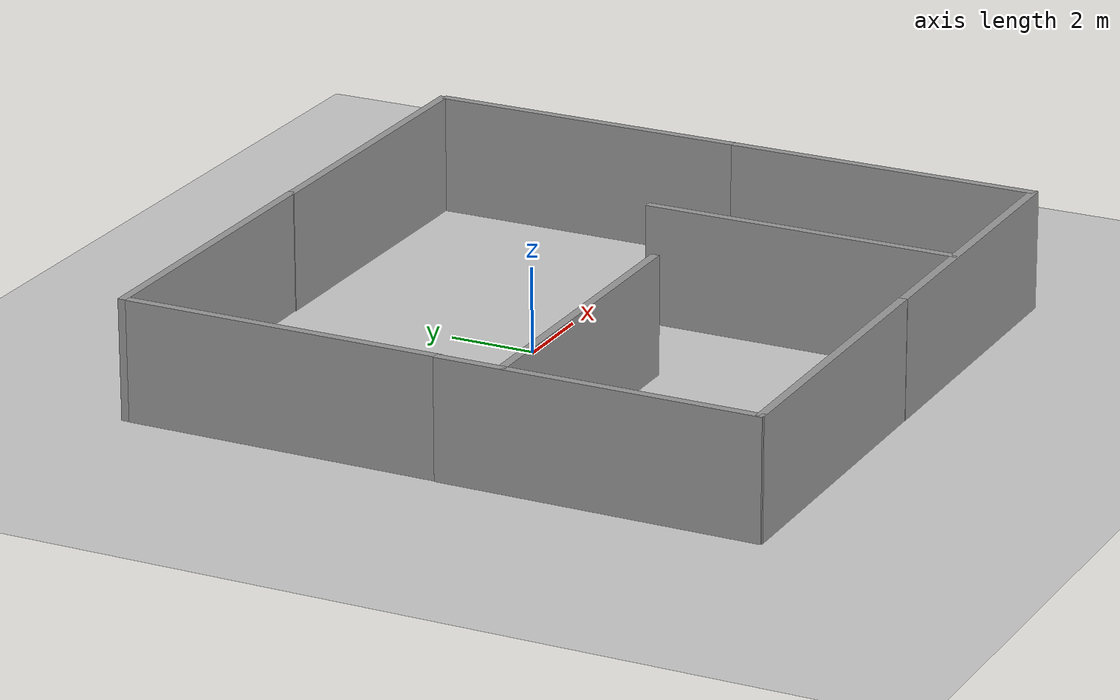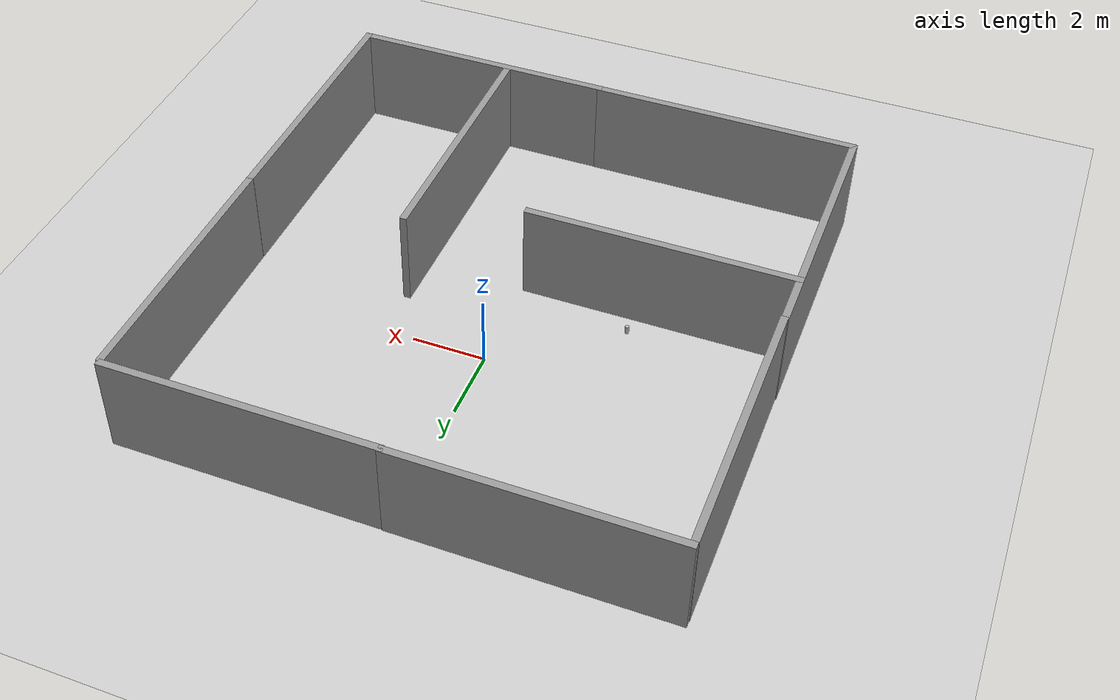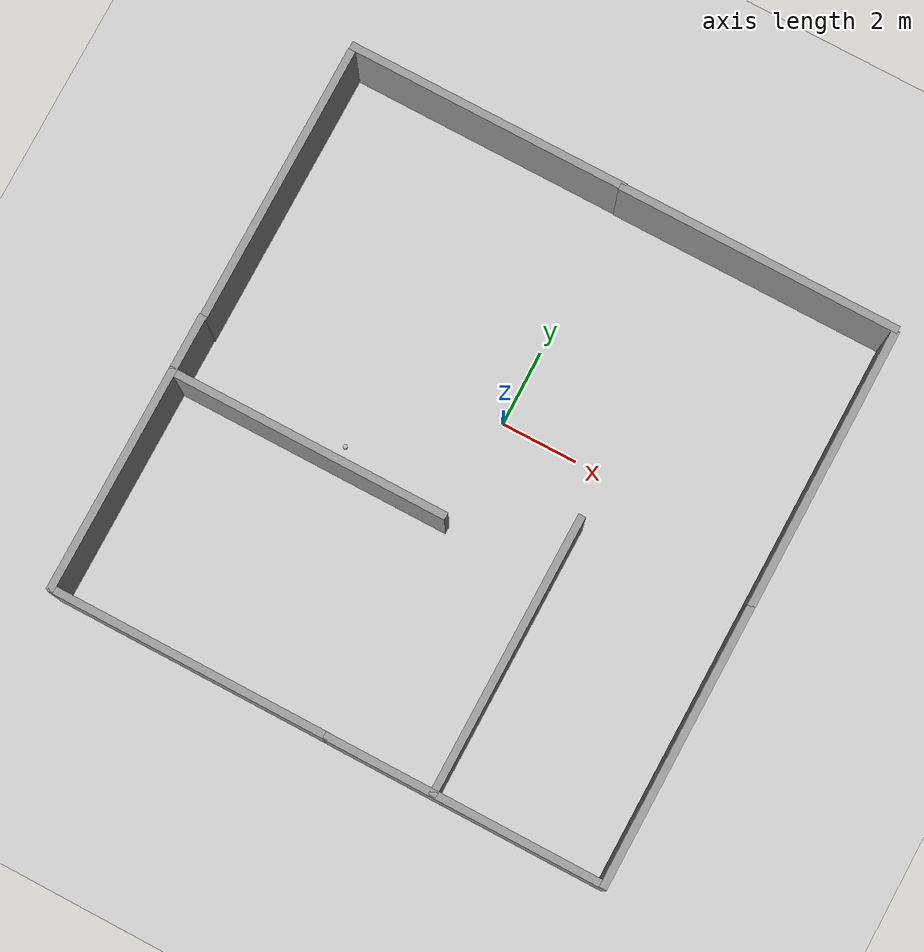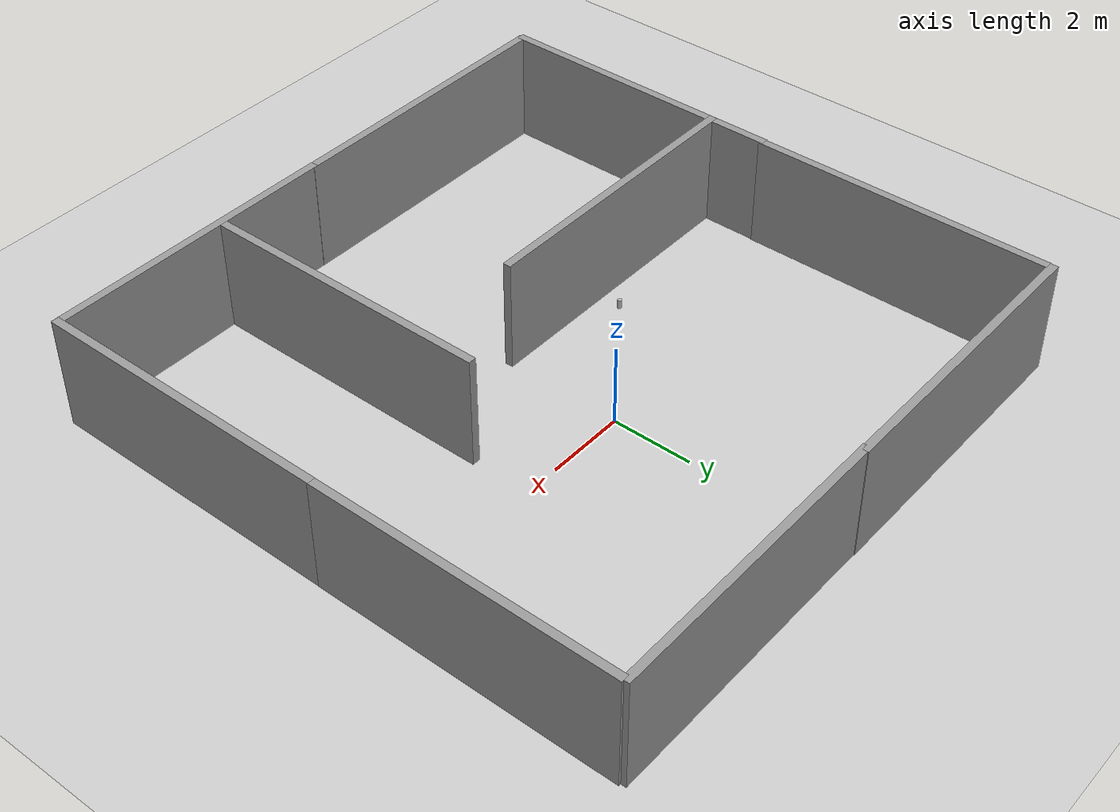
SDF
<sdf version="1.7">
 <world name="default">
  <light name="sun" type="directional">
   <pose>0 0 10 0 -0 0</pose>
   <diffuse>0.8 0.8 0.8 1</diffuse>
   <specular>0.2 0.2 0.2 1</specular>
   <attenuation>
    <range>1000</range>
    <constant>0.9</constant>
    <linear>0.01</linear>
    <quadratic>0.001</quadratic>
   </attenuation>
   <direction>-0.5 0.1 -0.9</direction>
   <spot><inner_angle>0</inner_angle><outer_angle>0</outer_angle><falloff>0</falloff></spot>
  </light>
  <model name="ground_plane">
   <static>1</static>
   <link name="link">
    <collision name="collision">
     <geometry><plane><normal>0 0 1</normal><size>100 100</size></plane></geometry>
     <surface><friction><ode><mu>100</mu><mu2>50</mu2></ode></friction></surface>
    </collision>
    <visual name="visual">
     <cast_shadows>0</cast_shadows>
     <geometry><plane><normal>0 0 1</normal><size>100 100</size></plane></geometry>
     <material>
      <script><uri>file://media/materials/scripts/gazebo.material</uri><name>Gazebo/Grey</name></script>
     </material>
    </visual>
   </link>
  </model>
  <gravity>0 0 -9.8</gravity>
  <magnetic_field>6e-06 2.3e-05 -4.2e-05</magnetic_field>
  <atmosphere type="adiabatic"/>
  <physics type="ode">
   <max_step_size>0.001</max_step_size>
   <real_time_factor>1</real_time_factor>
   <real_time_update_rate>1000</real_time_update_rate>
  </physics>
  <scene><ambient>0.4 0.4 0.4 1</ambient><background>0.7 0.7 0.7 1</background><shadows>1</shadows></scene>
  <audio><device>default</device></audio>
  <spherical_coordinates>
   <surface_model>EARTH_WGS84</surface_model>
   <latitude_deg>0</latitude_deg>
   <longitude_deg>0</longitude_deg>
   <elevation>0</elevation>
   <heading_deg>0</heading_deg>
  </spherical_coordinates>
  <model name="grey_wall">
   <static>1</static>
   <link name="link">
    <pose>0 0 1.4 0 -0 0</pose>
    <collision name="collision"><geometry><box><size>7.5 0.2 2.8</size></box></geometry></collision>
    <visual name="visual">
     <cast_shadows>0</cast_shadows>
     <geometry><box><size>7.5 0.2 2.8</size></box></geometry>
     <material>
      <script>
       <uri>model://grey_wall/materials/scripts</uri>
       <uri>model://grey_wall/materials/textures</uri>
       <name>vrc/grey_wall</name>
      </script>
     </material>
    </visual>
   </link>
   <pose>-7.33692 2.21848 0 0 0 -1.57324</pose>
  </model>
  <model name="grey_wall_clone">
   <static>1</static>
   <link name="link">
    <pose>0 0 1.4 0 -0 0</pose>
    <collision name="collision"><geometry><box><size>7.5 0.2 2.8</size></box></geometry></collision>
    <visual name="visual">
     <cast_shadows>0</cast_shadows>
     <geometry><box><size>7.5 0.2 2.8</size></box></geometry>
     <material>
      <script>
       <uri>model://grey_wall/materials/scripts</uri>
       <uri>model://grey_wall/materials/textures</uri>
       <name>vrc/grey_wall</name>
      </script>
     </material>
    </visual>
   </link>
   <pose>-3.66434 6.05844 0 0 -0 0</pose>
  </model>
  <model name="grey_wall_clone_clone">
   <static>1</static>
   <link name="link">
    <pose>0 0 1.4 0 -0 0</pose>
    <collision name="collision"><geometry><box><size>7.5 0.2 2.8</size></box></geometry></collision>
    <visual name="visual">
     <cast_shadows>0</cast_shadows>
     <geometry><box><size>7.5 0.2 2.8</size></box></geometry>
     <material>
      <script>
       <uri>model://grey_wall/materials/scripts</uri>
       <uri>model://grey_wall/materials/textures</uri>
       <name>vrc/grey_wall</name>
      </script>
     </material>
    </visual>
   </link>
   <pose>3.69251 6.04069 0 0 -0 0</pose>
  </model>
  <model name="grey_wall_clone_0">
   <static>1</static>
   <link name="link">
    <pose>0 0 1.4 0 -0 0</pose>
    <collision name="collision"><geometry><box><size>7.5 0.2 2.8</size></box></geometry></collision>
    <visual name="visual">
     <cast_shadows>0</cast_shadows>
     <geometry><box><size>7.5 0.2 2.8</size></box></geometry>
     <material>
      <script>
       <uri>model://grey_wall/materials/scripts</uri>
       <uri>model://grey_wall/materials/textures</uri>
       <name>vrc/grey_wall</name>
      </script>
     </material>
    </visual>
   </link>
   <pose>-7.37678 -5.18519 0 0 0 -1.57324</pose>
  </model>
  <model name="grey_wall_clone_clone_0">
   <static>1</static>
   <link name="link">
    <pose>0 0 1.4 0 -0 0</pose>
    <collision name="collision"><geometry><box><size>7.5 0.2 2.8</size></box></geometry></collision>
    <visual name="visual">
     <cast_shadows>0</cast_shadows>
     <geometry><box><size>7.5 0.2 2.8</size></box></geometry>
     <material>
      <script>
       <uri>model://grey_wall/materials/scripts</uri>
       <uri>model://grey_wall/materials/textures</uri>
       <name>vrc/grey_wall</name>
      </script>
     </material>
    </visual>
   </link>
   <pose>-3.68981 -8.86447 0 0 -0 0</pose>
  </model>
  <model name="grey_wall_clone_clone_1">
   <static>1</static>
   <link name="link">
    <pose>0 0 1.4 0 -0 0</pose>
    <collision name="collision"><geometry><box><size>7.5 0.2 2.8</size></box></geometry></collision>
    <visual name="visual">
     <cast_shadows>0</cast_shadows>
     <geometry><box><size>7.5 0.2 2.8</size></box></geometry>
     <material>
      <script>
       <uri>model://grey_wall/materials/scripts</uri>
       <uri>model://grey_wall/materials/textures</uri>
       <name>vrc/grey_wall</name>
      </script>
     </material>
    </visual>
   </link>
   <pose>3.69008 -8.87074 0 0 -0 0</pose>
  </model>
  <model name="grey_wall_clone_0_clone">
   <static>1</static>
   <link name="link">
    <pose>0 0 1.4 0 -0 0</pose>
    <collision name="collision"><geometry><box><size>7.5 0.2 2.8</size></box></geometry></collision>
    <visual name="visual">
     <cast_shadows>0</cast_shadows>
     <geometry><box><size>7.5 0.2 2.8</size></box></geometry>
     <material>
      <script>
       <uri>model://grey_wall/materials/scripts</uri>
       <uri>model://grey_wall/materials/textures</uri>
       <name>vrc/grey_wall</name>
      </script>
     </material>
    </visual>
   </link>
   <pose>7.36633 -5.21001 0 0 0 -1.57324</pose>
  </model>
  <model name="grey_wall_clone_0_clone_0">
   <static>1</static>
   <link name="link">
    <pose>0 0 1.4 0 -0 0</pose>
    <collision name="collision"><geometry><box><size>7.5 0.2 2.8</size></box></geometry></collision>
    <visual name="visual">
     <cast_shadows>0</cast_shadows>
     <geometry><box><size>7.5 0.2 2.8</size></box></geometry>
     <material>
      <script>
       <uri>model://grey_wall/materials/scripts</uri>
       <uri>model://grey_wall/materials/textures</uri>
       <name>vrc/grey_wall</name>
      </script>
     </material>
    </visual>
   </link>
   <pose>7.38795 2.26212 0 0 0 -1.57324</pose>
  </model>
  <model name="grey_wall_clone_0_clone_1">
   <static>1</static>
   <link name="link">
    <pose>0 0 1.4 0 -0 0</pose>
    <collision name="collision"><geometry><box><size>7.5 0.2 2.8</size></box></geometry></collision>
    <visual name="visual">
     <cast_shadows>0</cast_shadows>
     <geometry><box><size>7.5 0.2 2.8</size></box></geometry>
     <material>
      <script>
       <uri>model://grey_wall/materials/scripts</uri>
       <uri>model://grey_wall/materials/textures</uri>
       <name>vrc/grey_wall</name>
      </script>
     </material>
    </visual>
   </link>
   <pose>2.85128 -5.19405 0 0 0 -1.57324</pose>
  </model>
  <model name="grey_wall_clone_clone_2">
   <static>1</static>
   <link name="link">
    <pose>0 0 1.4 0 -0 0</pose>
    <collision name="collision"><geometry><box><size>7.5 0.2 2.8</size></box></geometry></collision>
    <visual name="visual">
     <cast_shadows>0</cast_shadows>
     <geometry><box><size>7.5 0.2 2.8</size></box></geometry>
     <material>
      <script>
       <uri>model://grey_wall/materials/scripts</uri>
       <uri>model://grey_wall/materials/textures</uri>
       <name>vrc/grey_wall</name>
      </script>
     </material>
    </visual>
   </link>
   <pose>-3.71585 -2.97884 0 0 -0 0</pose>
  </model>
  <model name="beer">
   <link name="link">
    <pose>0 0 0.115 0 -0 0</pose>
    <inertial>
     <mass>0.39</mass>
     <inertia><ixx>0.00058</ixx><ixy>0</ixy><ixz>0</ixz><iyy>0.00058</iyy><iyz>0</iyz><izz>0.00019</izz></inertia>
    </inertial>
    <collision name="collision">
     <geometry><cylinder><radius>0.055</radius><length>0.23</length></cylinder></geometry>
    </collision>
    <visual name="visual">
     <geometry><cylinder><radius>0.055</radius><length>0.23</length></cylinder></geometry>
     <material>
      <script>
       <uri>model://beer/materials/scripts</uri>
       <uri>model://beer/materials/textures</uri>
       <name>Beer/Diffuse</name>
      </script>
     </material>
    </visual>
   </link>
   <pose>-3.14526 -2.3512 -7e-06 -0 -0 -0.000175</pose>
  </model>
 </world>
</sdf>
